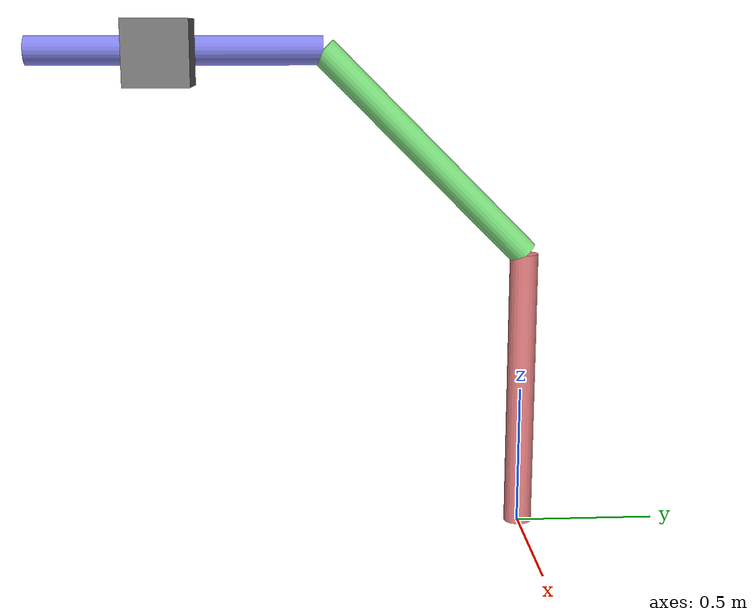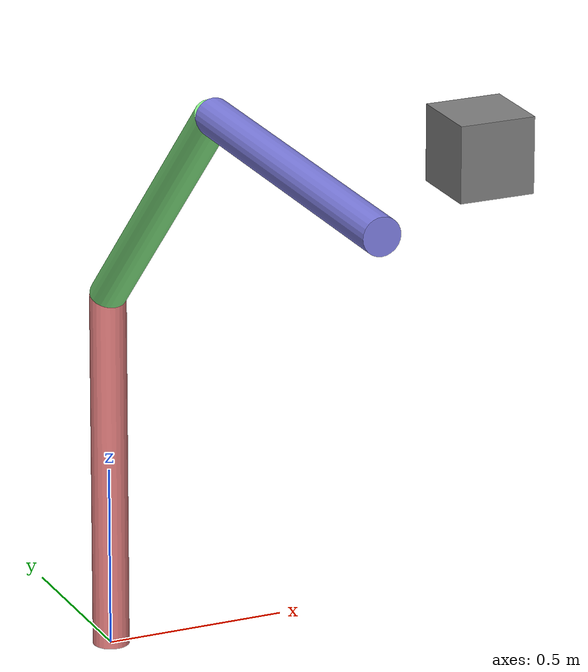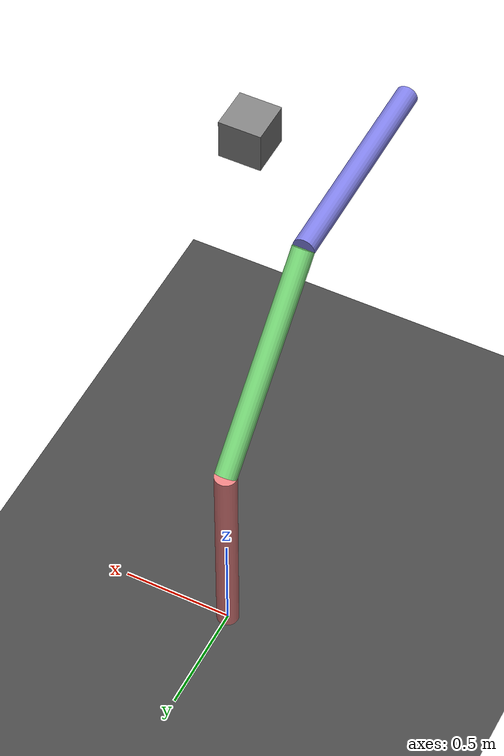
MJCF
<mujoco model="Coordinate conversion">
    <!-- Model helping to debug coordinate conversion via mjc api -->

    <asset>
        <texture type="skybox" builtin="gradient" rgb1=".6 .6 .9" rgb2="0 0 0" width="512" height="512"/>

        <texture name="texplane" type="2d" builtin="checker" rgb1=".25 .25 .25" rgb2=".3 .3 .3" width="512" height="512" mark="cross" markrgb=".8 .8 .8"/>
        <material name="matplane" reflectance=".3" texture="texplane" texrepeat="1 1" texuniform="true"/>
    </asset>

    <visual>
        <rgba haze=".35 .35 .5 1"/>
    </visual>

    <worldbody>
        <geom name="floor" pos=".0 .0 -1.0" size="0 0 1" type="plane" material="matplane"/>
        <light directional="true" diffuse=".8 .8 .8" specular=".2 .2 .2" pos=".0 .0 5.0" dir="0 0 -1"/>

        <body name="Link1">
            <geom name="Geom0" type="cylinder" fromto="0 0 0 0 0 1" size="0.05" rgba="0.9 0.5 0.5 1"/>
            <joint type="hinge" axis="0 0 1"/>

            <body name="Link2" pos="0 0 1" axisangle="1 0 0 45">
                <geom name="Geom45" type="cylinder" fromto="0 0 0 0 0 1" size="0.05" rgba="0.5 0.9 0.5 1"/>

                <body name="Link3" pos="0 0 1" axisangle="1 0 0 45">
                    <geom name="Geom90" type="cylinder" fromto="0 0 0 0 0 1" size="0.05" rgba="0.5 0.5 0.9 1"/>

                    <geom name="GeomDebug" type="box" size=".1 .1 .1" pos=".5 0 .5"/>

                </body>
            </body>
        </body>

    </worldbody>

    <contact>
        <exclude body1="Link1" body2="Link2"/>
        <exclude body1="Link2" body2="Link3"/>
    </contact>
</mujoco>
